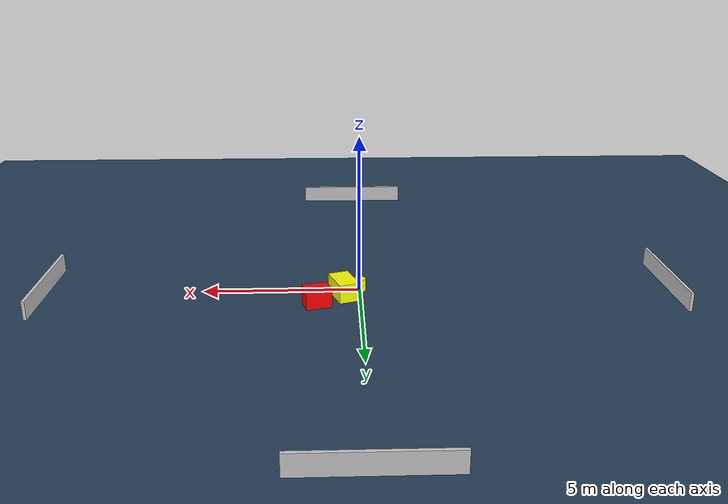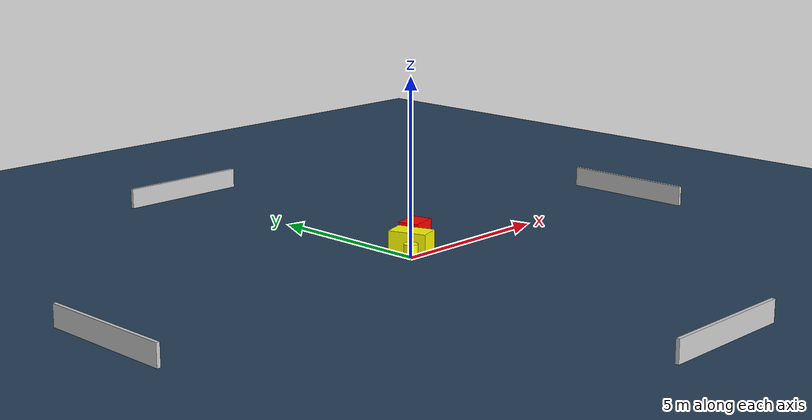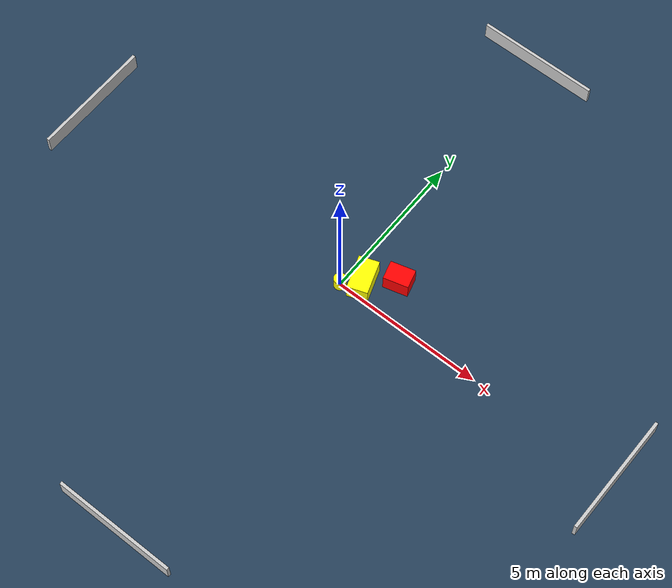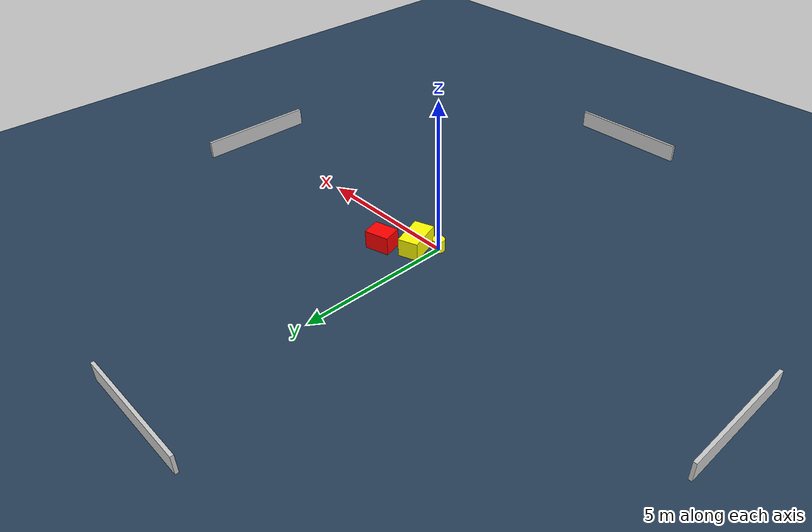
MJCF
<?xml version="1.0" ?>
<mujoco model="generated_environment">
  <option timestep="0.01" integrator="RK4" cone="elliptic"/>
  <default>
    <geom density="1"/>
  </default>
  <asset>
    <texture builtin="gradient" height="3072" name="skybox" rgb1="0.3 0.5 0.7" rgb2="0 0 0" type="skybox" width="512"/>
    <texture builtin="checker" height="300" name="groundplane" rgb1="0.2 0.3 0.4" rgb2="0.1 0.2 0.3" type="2d" width="300"/>
    <material name="groundplane" reflectance="0.2" texrepeat="5 5" texture="groundplane"/>
  </asset>
  <worldbody>
    <light dir="0 0 -1" directional="true" pos="0 0 1.5"/>
    <geom condim="3" friction="0.5 0.005 0.001" material="groundplane" name="floor" pos="0 0 0" size="0 0 0.05" type="plane"/>
    <body name="walls">
      <geom name="wall_1" condim="4" pos="-10.0 0.0 0.3" rgba="0.800000011920929 0.800000011920929 0.800000011920929 1.0" size="0.05 2.0 0.3" type="box"/>
      <geom name="wall_2" condim="4" pos="10.0 0.0 0.3" rgba="0.800000011920929 0.800000011920929 0.800000011920929 1.0" size="0.05 2.0 0.3" type="box"/>
      <geom name="wall_3" condim="4" pos="0.0 -10.0 0.3" rgba="0.800000011920929 0.800000011920929 0.800000011920929 1.0" size="2.0 0.05 0.3" type="box"/>
      <geom name="wall_4" condim="4" pos="0.0 10.0 0.3" rgba="0.800000011920929 0.800000011920929 0.800000011920929 1.0" size="2.0 0.05 0.3" type="box"/>
    </body>
    <body name="robot">
      <joint name="joint_x" type="slide" pos="0 0 0" axis="1 0 0"/>
      <joint name="joint_y" type="slide" pos="0 0 0" axis="0 1 0"/>
      <geom name="robot" type="cylinder" pos="0.0 0.0 0.2" size="0.2 0.2 0.0" mass="5.0" friction="1.0 0.005 0.0001" condim="4" rgba="1.0 1.0 0.0 1.0"/>
    </body>
    <body name="obstacle_1_movable">
      <geom name="obstacle_1_movable" condim="4" pos="0.5137807394032712 0.46141507254021535 0.3" euler="0 0 109.03801379432426" friction="0.0 0.005 0.001" rgba="1.0 1.0 0.0 1.0" size="0.5577836361557367 0.3303872187567146 0.3" type="box" mass="0.1"/>
      <joint type="free"/>
    </body>
    <body name="obstacle_2_static">
      <geom name="obstacle_2_static" condim="4" pos="1.3522616372106429 1.138698968529263 0.3" euler="0 0 104.96641927813549" friction="0.0 0.005 0.001" rgba="1.0 0.0 0.0 1.0" size="0.3059059216937151 0.40607961789456243 0.3" type="box"/>
    </body>
  </worldbody>
  <actuator>
    <motor name="actuator_x" joint="joint_x" gear="1" ctrlrange="-1 1"/>
    <motor name="actuator_y" joint="joint_y" gear="1" ctrlrange="-1 1"/>
  </actuator>
</mujoco>
